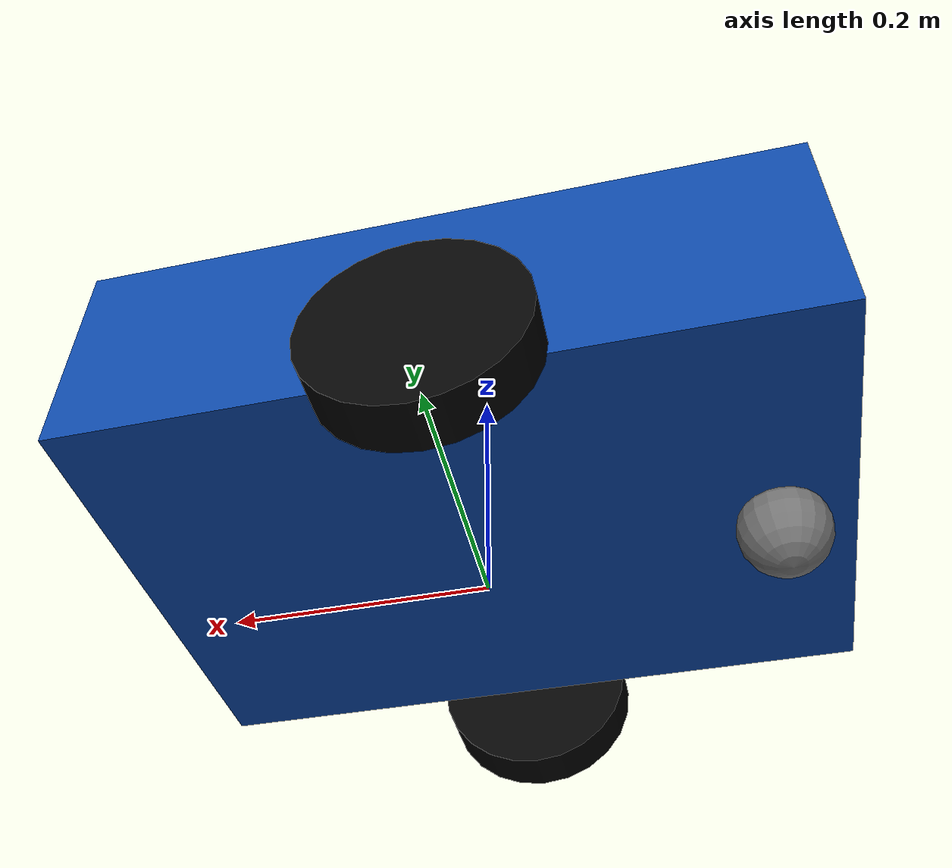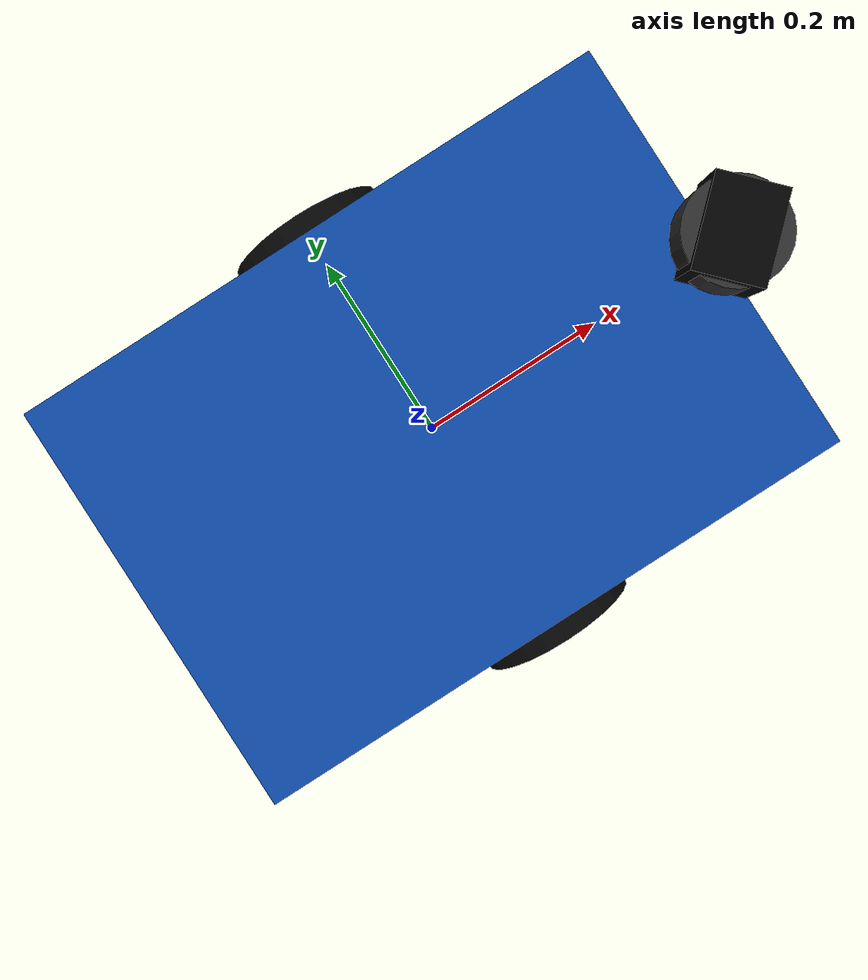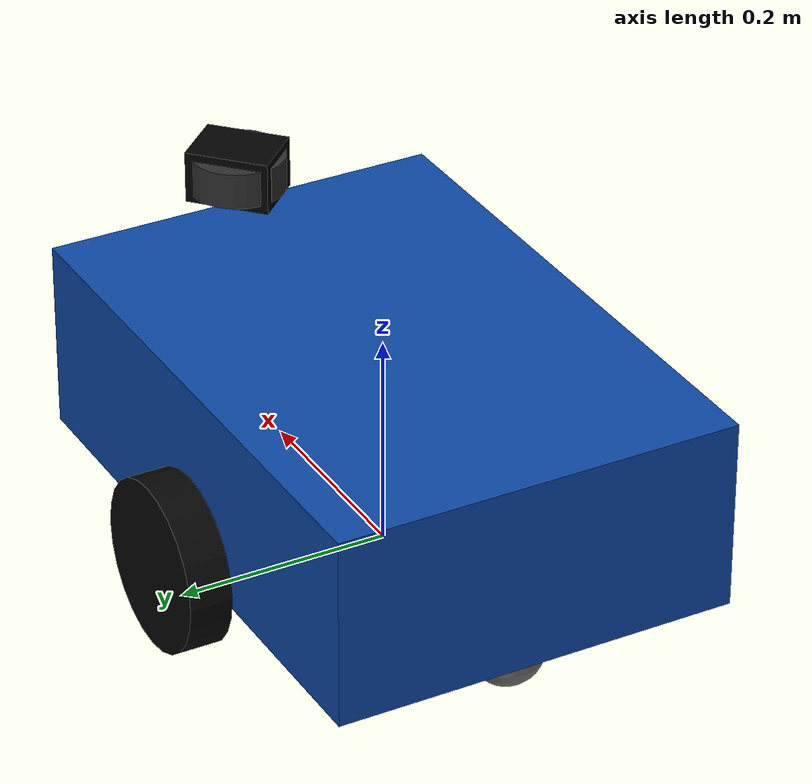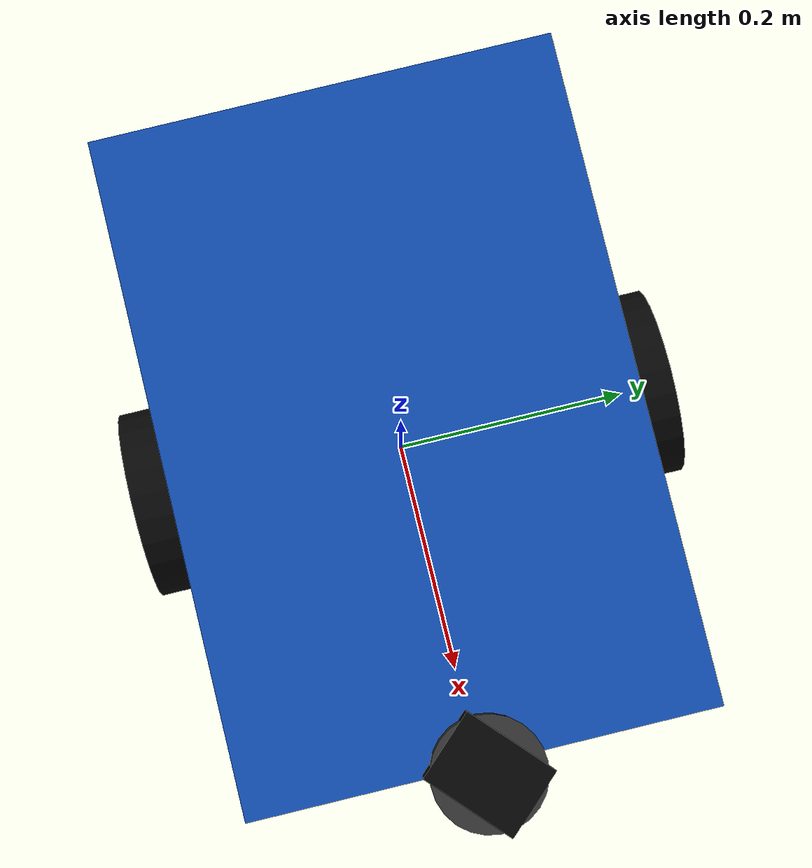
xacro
<?xml version="1.0"?>
<robot name="inspection_car" xmlns:xacro="http://www.ros.org/wiki/xacro">
  <xacro:property name="base_length" value="0.55"/>
  <xacro:property name="base_width" value="0.38"/>
  <xacro:property name="base_height" value="0.18"/>
  <xacro:property name="wheel_radius" value="0.08"/>
  <xacro:property name="wheel_width" value="0.04"/>

  <link name="base_footprint"/>#小车在地面上的投影坐标系（二维地面位置）

  <joint name="base_footprint_joint" type="fixed">
    <parent link="base_footprint"/>
    <child link="base_link"/>
    <origin xyz="0 0 0.12" rpy="0 0 0"/># base_link相对于base_footprint向上0.12
  </joint>
  #base_link小车车体坐标系（小车车身三维安装基准）
  <link name="base_link">
    <visual>
      <origin xyz="0 0 0" rpy="0 0 0"/>
      <geometry>
        <box size="${base_length} ${base_width} ${base_height}"/>
      </geometry>
      <material name="inspection_blue">
        <color rgba="0.05 0.28 0.65 1.0"/>
      </material>
    </visual>
    <collision>
      <origin xyz="0 0 0" rpy="0 0 0"/>
      <geometry>
        <box size="${base_length} ${base_width} ${base_height}"/>
      </geometry>
    </collision>
    <inertial>
      <mass value="8.0"/>
      <origin xyz="0 0 0" rpy="0 0 0"/>
      <inertia ixx="0.12" ixy="0" ixz="0" iyy="0.22" iyz="0" izz="0.28"/>
    </inertial>
  </link>

  <xacro:macro name="wheel" params="name y">
    <link name="${name}">
      <visual>
        <origin xyz="0 0 0" rpy="1.5708 0 0"/>
        <geometry>
          <cylinder radius="${wheel_radius}" length="${wheel_width}"/>
        </geometry>
        <material name="wheel_black">
          <color rgba="0.02 0.02 0.02 1"/>
        </material>
      </visual>
      <collision>
        <origin xyz="0 0 0" rpy="1.5708 0 0"/>
        <geometry>
          <cylinder radius="${wheel_radius}" length="${wheel_width}"/>
        </geometry>
      </collision>
      <inertial>
        <mass value="0.5"/>
        <origin xyz="0 0 0" rpy="0 0 0"/>
        <inertia ixx="0.002" ixy="0" ixz="0" iyy="0.002" iyz="0" izz="0.002"/>
      </inertial>
    </link>
    <joint name="${name}_joint" type="continuous">
      <parent link="base_link"/>
      <child link="${name}"/>
      <origin xyz="0 ${y} -0.08" rpy="0 0 0"/>
      <axis xyz="0 1 0"/>
    </joint>
  </xacro:macro>

  <xacro:wheel name="left_wheel" y="0.21"/>
  <xacro:wheel name="right_wheel" y="-0.21"/>

  <link name="caster_link">
    <visual>
      <origin xyz="0 0 0" rpy="0 0 0"/>
      <geometry>
        <sphere radius="0.035"/>
      </geometry>
      <material name="caster_gray">
        <color rgba="0.45 0.45 0.45 1"/>
      </material>
    </visual>
    <collision>
      <origin xyz="0 0 0" rpy="0 0 0"/>
      <geometry>
        <sphere radius="0.035"/>
      </geometry>
    </collision>
    <inertial>
      <mass value="0.1"/>
      <origin xyz="0 0 0" rpy="0 0 0"/>
      <inertia ixx="0.0001" ixy="0" ixz="0" iyy="0.0001" iyz="0" izz="0.0001"/>
    </inertial>
  </link>
  <joint name="caster_joint" type="fixed">
    <parent link="base_link"/>
    <child link="caster_link"/>
    <origin xyz="-0.22 0 -0.105" rpy="0 0 0"/>
  </joint>

  <link name="camera_link">
    <visual>
      <origin xyz="0 0 0" rpy="0 0 0"/>
      <geometry>
        <box size="0.06 0.08 0.05"/>
      </geometry>
      <material name="camera_black">
        <color rgba="0.01 0.01 0.01 1"/>
      </material>
    </visual>
  </link>
  <joint name="camera_joint" type="fixed">
    <parent link="base_link"/>
    <child link="camera_link"/>
    <origin xyz="0.28 0 0.12" rpy="0 0 -0.82"/>
  </joint>

  <link name="camera_optical_frame"/>
  <joint name="camera_optical_joint" type="fixed">
    <parent link="camera_link"/>
    <child link="camera_optical_frame"/>
    <origin xyz="0 0 0" rpy="-1.5708 0 -1.5708"/>
  </joint>
  <link name="lidar_link">
    <visual>
      <geometry>
        <cylinder radius="0.045" length="0.035"/>
      </geometry>
      <material name="lidar_gray">
        <color rgba="0.18 0.18 0.18 1.0"/>
      </material>
    </visual>
  </link>
  <joint name="lidar_joint" type="fixed">
    <parent link="base_link"/>
    <child link="lidar_link"/>
    <origin xyz="0.28 0 0.12" rpy="0 0 -0.82"/>
  </joint>

  <gazebo reference="lidar_link">
    <sensor name="front_lidar" type="ray">
      <always_on>true</always_on>
      <visualize>true</visualize>
      <update_rate>10.0</update_rate>
      <ray>
        <scan>
          <horizontal>
            <samples>720</samples>
            <resolution>1.0</resolution>
            <min_angle>-1.0</min_angle>
            <max_angle>1.0</max_angle>
          </horizontal>
          <vertical>
            <samples>32</samples>
            <resolution>1.0</resolution>
            <min_angle>-0.55</min_angle>
            <max_angle>0.55</max_angle>
          </vertical>
        </scan>
        <range>
          <min>0.10</min>
          <max>30.0</max>
          <resolution>0.01</resolution>
        </range>
        <noise>
          <type>gaussian</type>
          <mean>0.0</mean>
          <stddev>0.002</stddev>
        </noise>
      </ray>
      <plugin name="lidar_point_cloud" filename="libgazebo_ros_ray_sensor.so">
        <ros>
          <namespace>/lidar</namespace>
          <remapping>~/out:=points</remapping>
        </ros>
        <output_type>sensor_msgs/PointCloud2</output_type>
        <frame_name>lidar_link</frame_name>
      </plugin>
    </sensor>
  </gazebo>

  <gazebo reference="camera_link">
    <sensor name="front_camera" type="camera">
      <always_on>true</always_on>
      <update_rate>15</update_rate>
      <visualize>true</visualize>
      <camera>
        <horizontal_fov>1.745</horizontal_fov>
        <image>
          <width>640</width>
          <height>480</height>
          <format>R8G8B8</format>
        </image>
        <clip>
          <near>0.05</near>
          <far>20.0</far>
        </clip>
      </camera>
      <plugin name="camera_controller" filename="libgazebo_ros_camera.so">
        <ros>
          <namespace>/camera</namespace>
          <remapping>front_camera/image_raw:=image_raw</remapping>
          <remapping>front_camera/camera_info:=camera_info</remapping>
        </ros>
        <camera_name>front_camera</camera_name>
        <frame_name>camera_optical_frame</frame_name>
      </plugin>
    </sensor>
  </gazebo>

  <gazebo>
    <plugin name="diff_drive" filename="libgazebo_ros_diff_drive.so">
      <ros>
        <remapping>cmd_vel:=/cmd_vel</remapping>
        <remapping>odom:=/odom</remapping>
      </ros>
      <left_joint>left_wheel_joint</left_joint>
      <right_joint>right_wheel_joint</right_joint>
      <wheel_separation>0.42</wheel_separation>
      <wheel_diameter>0.16</wheel_diameter>
      <max_wheel_torque>20</max_wheel_torque>
      <max_wheel_acceleration>5.0</max_wheel_acceleration>
      <publish_odom>true</publish_odom>
      <publish_odom_tf>true</publish_odom_tf>
      <publish_wheel_tf>true</publish_wheel_tf>
      <odometry_frame>odom</odometry_frame>
      <robot_base_frame>base_footprint</robot_base_frame>
      <odometry_source>1</odometry_source>
    </plugin>
  </gazebo>
</robot>
